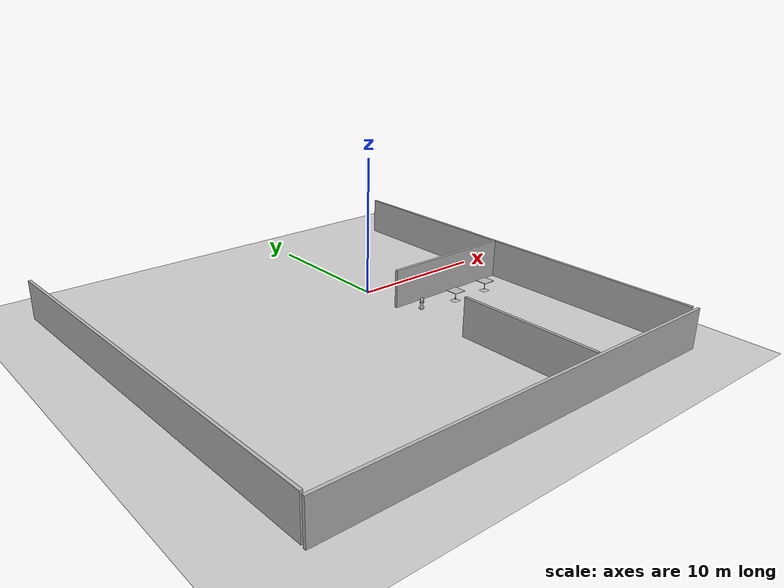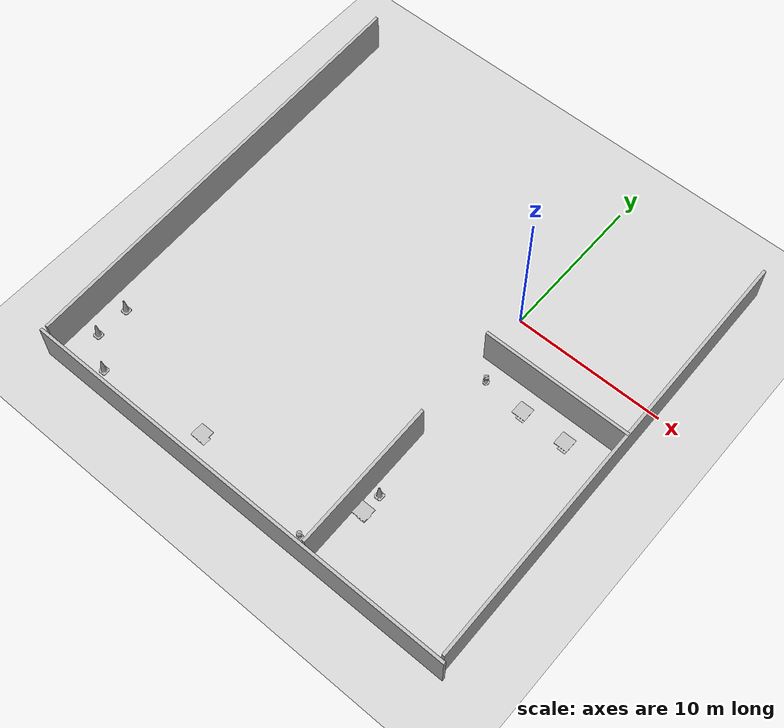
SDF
<sdf version="1.4">
 <world name="default">
  <model name="ground_plane">
   <static>1</static>
   <link name="link">
    <collision name="collision">
     <geometry><plane><normal>0 0 1</normal><size>100 100</size></plane></geometry>
     <surface><friction><ode><mu>100</mu><mu2>50</mu2></ode></friction></surface>
    </collision>
    <visual name="visual">
     <cast_shadows>0</cast_shadows>
     <geometry><plane><normal>0 0 1</normal><size>100 100</size></plane></geometry>
     <material>
      <script><uri>file://media/materials/scripts/gazebo.material</uri><name>Gazebo/Grey</name></script>
     </material>
    </visual>
    <velocity_decay><linear>0</linear><angular>0</angular></velocity_decay>
   </link>
  </model>
  <model name="house_0">
   <static>1</static>
   <link name="link">
    <pose>0 0 1.4 0 -0 0</pose>
    <collision name="collision"><geometry><box><size>30 0.2 2.8</size></box></geometry></collision>
    <visual name="visual">
     <cast_shadows>0</cast_shadows>
     <geometry><box><size>30 0.2 2.8</size></box></geometry>
     <material>
      <script>
       <uri>model://house/materials/scripts</uri>
       <uri>model://house/materials/textures</uri>
       <name>vrc/house_wall1</name>
      </script>
     </material>
    </visual>
    <velocity_decay><linear>0</linear><angular>0</angular></velocity_decay>
   </link>
   <pose>9.79154 -4.42227 -1e-06 0.006387 0.005422 1.58268</pose>
  </model>
  <model name="house_1">
   <static>1</static>
   <link name="link">
    <pose>0 0 1.4 0 -0 0</pose>
    <collision name="collision"><geometry><box><size>30 0.2 2.8</size></box></geometry></collision>
    <visual name="visual">
     <cast_shadows>0</cast_shadows>
     <geometry><box><size>30 0.2 2.8</size></box></geometry>
     <material>
      <script>
       <uri>model://house/materials/scripts</uri>
       <uri>model://house/materials/textures</uri>
       <name>vrc/house_wall3</name>
      </script>
     </material>
    </visual>
    <velocity_decay><linear>0</linear><angular>0</angular></velocity_decay>
   </link>
   <pose>-4.70828 -19.6385 0 0 -0 0</pose>
  </model>
  <model name="house_2">
   <static>1</static>
   <link name="link">
    <pose>0 0 1.4 0 -0 0</pose>
    <collision name="collision"><geometry><box><size>30 0.2 2.8</size></box></geometry></collision>
    <visual name="visual">
     <cast_shadows>0</cast_shadows>
     <geometry><box><size>30 0.2 2.8</size></box></geometry>
     <material>
      <script>
       <uri>model://house/materials/scripts</uri>
       <uri>model://house/materials/textures</uri>
       <name>vrc/house_wall4</name>
      </script>
     </material>
    </visual>
    <velocity_decay><linear>0</linear><angular>0</angular></velocity_decay>
   </link>
   <pose>-20.0727 -4.34365 0 0 0 -1.53771</pose>
  </model>
  <model name="house_3">
   <static>1</static>
   <link name="link">
    <pose>0 0 1.4 0 -0 0</pose>
    <collision name="collision"><geometry><box><size>10 0.2 2.8</size></box></geometry></collision>
    <visual name="visual">
     <cast_shadows>0</cast_shadows>
     <geometry><box><size>10 0.2 2.8</size></box></geometry>
     <material>
      <script>
       <uri>model://house/materials/scripts</uri>
       <uri>model://house/materials/textures</uri>
       <name>vrc/house_wall5</name>
      </script>
     </material>
    </visual>
    <velocity_decay><linear>0</linear><angular>0</angular></velocity_decay>
   </link>
   <pose>0.3621 -14.4458 0 0 0 -1.55254</pose>
  </model>
  <model name="house_4">
   <static>1</static>
   <link name="link">
    <pose>0 0 1.4 0 -0 0</pose>
    <collision name="collision"><geometry><box><size>10 0.2 2.8</size></box></geometry></collision>
    <visual name="visual">
     <cast_shadows>0</cast_shadows>
     <geometry><box><size>10 0.2 2.8</size></box></geometry>
     <material>
      <script>
       <uri>model://house/materials/scripts</uri>
       <uri>model://house/materials/textures</uri>
       <name>vrc/house_wall6</name>
      </script>
     </material>
    </visual>
    <velocity_decay><linear>0</linear><angular>0</angular></velocity_decay>
   </link>
   <pose>4.84392 -3.27141 0 0 -0 0</pose>
  </model>
  <model name="cafe_table_0">
   <static>1</static>
   <link name="link">
    <collision name="surface">
     <pose>0 0 0.755 0 -0 0</pose>
     <geometry><box><size>0.913 0.913 0.04</size></box></geometry>
    </collision>
    <collision name="column">
     <pose>0 0 0.37 0 -0 0</pose>
     <geometry><box><size>0.042 0.042 0.74</size></box></geometry>
    </collision>
    <collision name="base">
     <pose>0 0 0.02 0 -0 0</pose>
     <geometry><box><size>0.56 0.56 0.04</size></box></geometry>
    </collision>
    <visual name="visual">
     <geometry><mesh><uri>model://cafe_table/meshes/cafe_table.dae</uri></mesh></geometry>
    </visual>
    <velocity_decay><linear>0</linear><angular>0</angular></velocity_decay>
   </link>
   <pose>1.1451 -15.4812 0 0 -0 0</pose>
  </model>
  <model name="Construction Cone">
   <link name="link">
    <collision name="collision">
     <geometry>
      <mesh><scale>10 10 10</scale><uri>model://construction_cone/meshes/construction_cone.dae</uri></mesh>
     </geometry>
    </collision>
    <visual name="visual">
     <geometry>
      <mesh><scale>10 10 10</scale><uri>model://construction_cone/meshes/construction_cone.dae</uri></mesh>
     </geometry>
    </visual>
    <velocity_decay><linear>0</linear><angular>0</angular></velocity_decay>
    <inertial>
     <inertia><ixx>1</ixx><ixy>0</ixy><ixz>0</ixz><iyy>1</iyy><iyz>0</iyz><izz>1</izz></inertia>
     <mass>1</mass>
    </inertial>
   </link>
   <pose>1 -14 0 0 -0 0</pose>
   <static>0</static>
  </model>
  <model name="Construction Cone_0">
   <link name="link">
    <collision name="collision">
     <geometry>
      <mesh><scale>10 10 10</scale><uri>model://construction_cone/meshes/construction_cone.dae</uri></mesh>
     </geometry>
    </collision>
    <visual name="visual">
     <geometry>
      <mesh><scale>10 10 10</scale><uri>model://construction_cone/meshes/construction_cone.dae</uri></mesh>
     </geometry>
    </visual>
    <velocity_decay><linear>0</linear><angular>0</angular></velocity_decay>
    <inertial>
     <inertia><ixx>1</ixx><ixy>0</ixy><ixz>0</ixz><iyy>1</iyy><iyz>0</iyz><izz>1</izz></inertia>
     <mass>1</mass>
    </inertial>
   </link>
   <pose>-18.4022 -14.76 -1e-06 0 -1e-06 0</pose>
   <static>0</static>
  </model>
  <model name="fire_hydrant">
   <static>1</static>
   <link name="link">
    <collision name="collision">
     <geometry><mesh><uri>model://fire_hydrant/meshes/fire_hydrant.dae</uri></mesh></geometry>
    </collision>
    <visual name="visual">
     <geometry><mesh><uri>model://fire_hydrant/meshes/fire_hydrant.dae</uri></mesh></geometry>
    </visual>
    <velocity_decay><linear>0</linear><angular>0</angular></velocity_decay>
   </link>
   <pose>-0.674066 -18.7038 0 0 -0 0</pose>
  </model>
  <model name="coke_can_0">
   <link name="link">
    <inertial>
     <pose>-0.01 -0.012 0.15 0 -0 0</pose>
     <mass>0.39</mass>
     <inertia><ixx>0.00058</ixx><ixy>0</ixy><ixz>0</ixz><iyy>0.00058</iyy><iyz>0</iyz><izz>0.00019</izz></inertia>
    </inertial>
    <collision name="collision">
     <pose>0 0 -0.46 0 -0 0</pose>
     <geometry><mesh><uri>model://coke_can/meshes/coke_can.dae</uri></mesh></geometry>
     <surface>
      <friction><ode><mu>1</mu><mu2>1</mu2></ode></friction>
      <contact><ode><kp>1e+07</kp><kd>1</kd><min_depth>0.001</min_depth><max_vel>0.1</max_vel></ode></contact>
     </surface>
    </collision>
    <visual name="visual">
     <pose>0 0 -0.46 0 -0 0</pose>
     <geometry><mesh><uri>model://coke_can/meshes/coke_can.dae</uri></mesh></geometry>
    </visual>
    <velocity_decay><linear>0</linear><angular>0</angular></velocity_decay>
   </link>
   <pose>8.00001 -18.0003 -0.004903 -0.064469 0.001262 -0.000122</pose>
   <static>0</static>
  </model>
  <model name="cafe_table_2">
   <static>1</static>
   <link name="link">
    <collision name="surface">
     <pose>0 0 0.755 0 -0 0</pose>
     <geometry><box><size>0.913 0.913 0.04</size></box></geometry>
    </collision>
    <collision name="column">
     <pose>0 0 0.37 0 -0 0</pose>
     <geometry><box><size>0.042 0.042 0.74</size></box></geometry>
    </collision>
    <collision name="base">
     <pose>0 0 0.02 0 -0 0</pose>
     <geometry><box><size>0.56 0.56 0.04</size></box></geometry>
    </collision>
    <visual name="visual">
     <geometry><mesh><uri>model://cafe_table/meshes/cafe_table.dae</uri></mesh></geometry>
    </visual>
    <velocity_decay><linear>0</linear><angular>0</angular></velocity_decay>
   </link>
   <pose>-8.88915 -17.8388 0 0 -0 0</pose>
  </model>
  <model name="fire_hydrant_2">
   <static>1</static>
   <link name="link">
    <collision name="collision">
     <geometry><mesh><uri>model://fire_hydrant/meshes/fire_hydrant.dae</uri></mesh></geometry>
    </collision>
    <visual name="visual">
     <geometry><mesh><uri>model://fire_hydrant/meshes/fire_hydrant.dae</uri></mesh></geometry>
    </visual>
    <velocity_decay><linear>0</linear><angular>0</angular></velocity_decay>
   </link>
   <pose>1.04272 -4.63031 0 0 -0 0</pose>
  </model>
  <model name="coke_can_2">
   <link name="link">
    <inertial>
     <pose>-0.01 -0.012 0.15 0 -0 0</pose>
     <mass>0.39</mass>
     <inertia><ixx>0.00058</ixx><ixy>0</ixy><ixz>0</ixz><iyy>0.00058</iyy><iyz>0</iyz><izz>0.00019</izz></inertia>
    </inertial>
    <collision name="collision">
     <pose>0 0 -0.46 0 -0 0</pose>
     <geometry><mesh><uri>model://coke_can/meshes/coke_can.dae</uri></mesh></geometry>
     <surface>
      <friction><ode><mu>1</mu><mu2>1</mu2></ode></friction>
      <contact><ode><kp>1e+07</kp><kd>1</kd><min_depth>0.001</min_depth><max_vel>0.1</max_vel></ode></contact>
     </surface>
    </collision>
    <visual name="visual">
     <pose>0 0 -0.46 0 -0 0</pose>
     <geometry><mesh><uri>model://coke_can/meshes/coke_can.dae</uri></mesh></geometry>
    </visual>
    <velocity_decay><linear>0</linear><angular>0</angular></velocity_decay>
   </link>
   <pose>-8.41397 -17.6636 -0.004924 -0.06267 0.002507 -0.011846</pose>
   <static>0</static>
  </model>
  <model name="coke_can_3">
   <link name="link">
    <inertial>
     <pose>-0.01 -0.012 0.15 0 -0 0</pose>
     <mass>0.39</mass>
     <inertia><ixx>0.00058</ixx><ixy>0</ixy><ixz>0</ixz><iyy>0.00058</iyy><iyz>0</iyz><izz>0.00019</izz></inertia>
    </inertial>
    <collision name="collision">
     <pose>0 0 -0.46 0 -0 0</pose>
     <geometry><mesh><uri>model://coke_can/meshes/coke_can.dae</uri></mesh></geometry>
     <surface>
      <friction><ode><mu>1</mu><mu2>1</mu2></ode></friction>
      <contact><ode><kp>1e+07</kp><kd>1</kd><min_depth>0.001</min_depth><max_vel>0.1</max_vel></ode></contact>
     </surface>
    </collision>
    <visual name="visual">
     <pose>0 0 -0.46 0 -0 0</pose>
     <geometry><mesh><uri>model://coke_can/meshes/coke_can.dae</uri></mesh></geometry>
    </visual>
    <velocity_decay><linear>0</linear><angular>0</angular></velocity_decay>
   </link>
   <pose>6 -18.0002 -0.004911 -0.063761 0.001751 -0.000103</pose>
   <static>0</static>
  </model>
  <model name="coke_can_4">
   <link name="link">
    <inertial>
     <pose>-0.01 -0.012 0.15 0 -0 0</pose>
     <mass>0.39</mass>
     <inertia><ixx>0.00058</ixx><ixy>0</ixy><ixz>0</ixz><iyy>0.00058</iyy><iyz>0</iyz><izz>0.00019</izz></inertia>
    </inertial>
    <collision name="collision">
     <pose>0 0 -0.46 0 -0 0</pose>
     <geometry><mesh><uri>model://coke_can/meshes/coke_can.dae</uri></mesh></geometry>
     <surface>
      <friction><ode><mu>1</mu><mu2>1</mu2></ode></friction>
      <contact><ode><kp>1e+07</kp><kd>1</kd><min_depth>0.001</min_depth><max_vel>0.1</max_vel></ode></contact>
     </surface>
    </collision>
    <visual name="visual">
     <pose>0 0 -0.46 0 -0 0</pose>
     <geometry><mesh><uri>model://coke_can/meshes/coke_can.dae</uri></mesh></geometry>
    </visual>
    <velocity_decay><linear>0</linear><angular>0</angular></velocity_decay>
   </link>
   <pose>-18 -11.0003 -0.00491 -0.063877 0.001671 -4.9e-05</pose>
   <static>0</static>
  </model>
  <model name="Construction Cone_3">
   <link name="link">
    <collision name="collision">
     <geometry>
      <mesh><scale>10 10 10</scale><uri>model://construction_cone/meshes/construction_cone.dae</uri></mesh>
     </geometry>
    </collision>
    <visual name="visual">
     <geometry>
      <mesh><scale>10 10 10</scale><uri>model://construction_cone/meshes/construction_cone.dae</uri></mesh>
     </geometry>
    </visual>
    <velocity_decay><linear>0</linear><angular>0</angular></velocity_decay>
    <inertial>
     <inertia><ixx>1</ixx><ixy>0</ixy><ixz>0</ixz><iyy>1</iyy><iyz>0</iyz><izz>1</izz></inertia>
     <mass>1</mass>
    </inertial>
   </link>
   <pose>-18.4267 -17 -0 0 2e-06 0</pose>
   <static>0</static>
  </model>
  <model name="Construction Cone_4">
   <link name="link">
    <collision name="collision">
     <geometry>
      <mesh><scale>10 10 10</scale><uri>model://construction_cone/meshes/construction_cone.dae</uri></mesh>
     </geometry>
    </collision>
    <visual name="visual">
     <geometry>
      <mesh><scale>10 10 10</scale><uri>model://construction_cone/meshes/construction_cone.dae</uri></mesh>
     </geometry>
    </visual>
    <velocity_decay><linear>0</linear><angular>0</angular></velocity_decay>
    <inertial>
     <inertia><ixx>1</ixx><ixy>0</ixy><ixz>0</ixz><iyy>1</iyy><iyz>0</iyz><izz>1</izz></inertia>
     <mass>1</mass>
    </inertial>
   </link>
   <pose>-16.4325 -18.4475 -0 0 1e-06 0</pose>
   <static>0</static>
  </model>
  <model name="cafe_table_4">
   <static>1</static>
   <link name="link">
    <collision name="surface">
     <pose>0 0 0.755 0 -0 0</pose>
     <geometry><box><size>0.913 0.913 0.04</size></box></geometry>
    </collision>
    <collision name="column">
     <pose>0 0 0.37 0 -0 0</pose>
     <geometry><box><size>0.042 0.042 0.74</size></box></geometry>
    </collision>
    <collision name="base">
     <pose>0 0 0.02 0 -0 0</pose>
     <geometry><box><size>0.56 0.56 0.04</size></box></geometry>
    </collision>
    <visual name="visual">
     <geometry><mesh><uri>model://cafe_table/meshes/cafe_table.dae</uri></mesh></geometry>
    </visual>
    <velocity_decay><linear>0</linear><angular>0</angular></velocity_decay>
   </link>
   <pose>4 -5 0 0 -0 0</pose>
  </model>
  <model name="cafe_table_5">
   <static>1</static>
   <link name="link">
    <collision name="surface">
     <pose>0 0 0.755 0 -0 0</pose>
     <geometry><box><size>0.913 0.913 0.04</size></box></geometry>
    </collision>
    <collision name="column">
     <pose>0 0 0.37 0 -0 0</pose>
     <geometry><box><size>0.042 0.042 0.74</size></box></geometry>
    </collision>
    <collision name="base">
     <pose>0 0 0.02 0 -0 0</pose>
     <geometry><box><size>0.56 0.56 0.04</size></box></geometry>
    </collision>
    <visual name="visual">
     <geometry><mesh><uri>model://cafe_table/meshes/cafe_table.dae</uri></mesh></geometry>
    </visual>
    <velocity_decay><linear>0</linear><angular>0</angular></velocity_decay>
   </link>
   <pose>7 -5 0 0 -0 0</pose>
  </model>
 </world>
</sdf>
